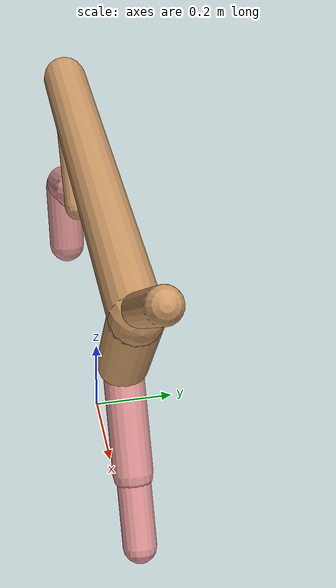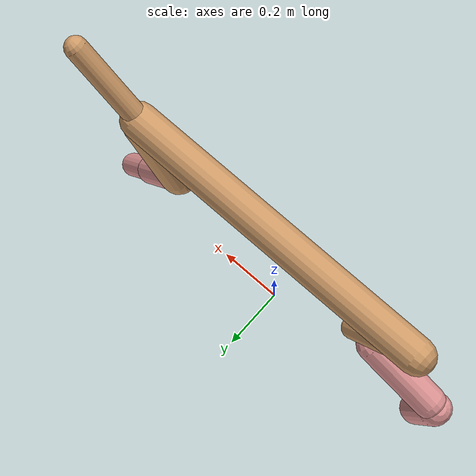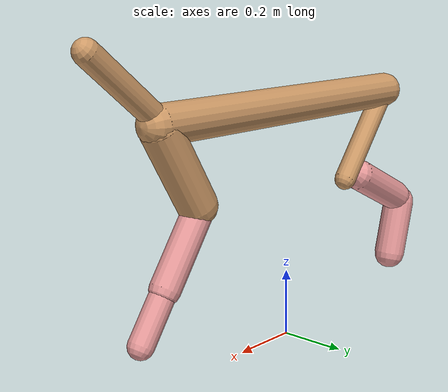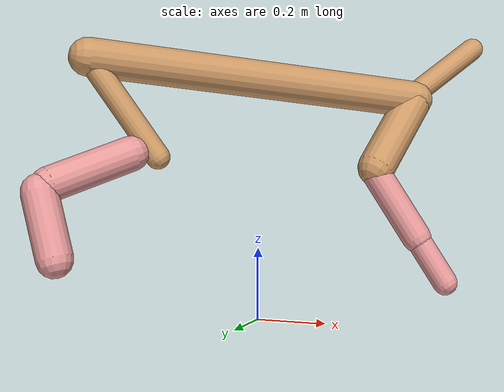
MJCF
<?xml version="1.0" encoding="utf-8"?>
<mujoco model="cheetah">
	<compiler angle="radian" coordinate="local" inertiafromgeom="true" settotalmass="14"></compiler>
	<default>
		<joint armature=".1" damping="0.01193193807144803" limited="true" solimplimit="0 .8 .03" solreflimit=".02 1" stiffness="8.163385104196468"></joint>
		<geom conaffinity="0" condim="3" contype="1" friction="0.8510120159940766 0.11759789700228357 0.07716142857999114" rgba="0.8 0.6 .4 1" solimp="0.0 0.8 0.01" solref="0.02 1"></geom>
		<motor ctrllimited="true" ctrlrange="-1 1"></motor>
	</default>
	<size nstack="300000" nuser_geom="1"></size>
	<option gravity="0 0 -9.81" timestep="0.01"></option>
	<worldbody>
		<body name="torso" pos="0 0 .7">
			<joint armature="0" axis="1 0 0" damping="0.0" limited="false" name="ignorex" pos="0 0 0" stiffness="0.0" type="slide"></joint>
			<joint armature="0" axis="0 0 1" damping="0.0" limited="false" name="ignorez" pos="0 0 0" stiffness="0.0" type="slide"></joint>
			<joint armature="0" axis="0 1 0" damping="0.0" limited="false" name="ignorey" pos="0 0 0" stiffness="0.0" type="hinge"></joint>
			<geom fromto="-.5 0 0 .5 0 0" name="torso" size="0.05458323236320731" type="capsule"></geom>
			<geom axisangle="0 1 0 .87" name="head" pos=".6 0 .1" size="0.03370495048534512 0.14025811462089302" type="capsule"></geom>
			<body name="bthigh" pos="-.5 0 0">
				<joint axis="0 1 0" damping="5.532321966006032" name="bthigh" pos="0 0 0" range="-.52 1.05" stiffness="241.6917055429189" type="hinge"></joint>
				<geom axisangle="0 1 0 -3.8" name="bthigh" pos=".1 0 -.13" size="0.03391515218792283 0.17362910369806792" type="capsule"></geom>
				<body name="bshin" pos=".16 0 -.25">
					<joint axis="0 1 0" damping="3.6743696399654326" name="bshin" pos="0 0 0" range="-.785 .785" stiffness="172.81190064651778" type="hinge"></joint>
					<geom axisangle="0 1 0 -2.03" name="bshin" pos="-.14 0 -.07" rgba="0.9 0.6 0.6 1" size="0.049391097714882475 0.12350274727741561" type="capsule"></geom>
					<body name="bfoot" pos="-.28 0 -.14">
						<joint axis="0 1 0" damping="3.0958892566170766" name="bfoot" pos="0 0 0" range="-.4 .785" stiffness="102.58381989034268" type="hinge"></joint>
						<geom axisangle="0 1 0 -.27" name="bfoot" pos=".03 0 -.097" rgba="0.9 0.6 0.6 1" size="0.05082601762565402 0.09237530176518766" type="capsule"></geom>
						<inertial mass="10"></inertial>
					</body>
				</body>
			</body>
			<body name="fthigh" pos=".5 0 0">
				<joint axis="0 1 0" damping="4.6985246833102945" name="fthigh" pos="0 0 0" range="-1.5 0.8" stiffness="211.2510192405404" type="hinge"></joint>
				<geom axisangle="0 1 0 .52" name="fthigh" pos="-.07 0 -.12" size="0.054935994641688066 0.1254076654022516" type="capsule"></geom>
				<body name="fshin" pos="-.14 0 -.24">
					<joint axis="0 1 0" damping="3.4902888729217967" name="fshin" pos="0 0 0" range="-1.2 1.1" stiffness="141.05516557537115" type="hinge"></joint>
					<geom axisangle="0 1 0 -.6" name="fshin" pos=".065 0 -.09" rgba="0.9 0.6 0.6 1" size="0.043093678936046986 0.11978635952123595" type="capsule"></geom>
					<body name="ffoot" pos=".13 0 -.18">
						<joint axis="0 1 0" damping="1.615867265418664" name="ffoot" pos="0 0 0" range="-3.1 -0.3" stiffness="43.69744874505369" type="hinge"></joint>
						<geom axisangle="0 1 0 -.6" name="ffoot" pos=".045 0 -.07" rgba="0.9 0.6 0.6 1" size="0.03630615479767163 0.08102426722564471" type="capsule"></geom>
						<inertial mass="10"></inertial>
					</body>
				</body>
			</body>
		</body>
	</worldbody>
	<actuator>
		<motor gear="120" joint="bthigh" name="bthigh"></motor>
		<motor gear="90" joint="bshin" name="bshin"></motor>
		<motor gear="60" joint="bfoot" name="bfoot"></motor>
		<motor gear="120" joint="fthigh" name="fthigh"></motor>
		<motor gear="60" joint="fshin" name="fshin"></motor>
		<motor gear="30" joint="ffoot" name="ffoot"></motor>
	</actuator>
</mujoco>
